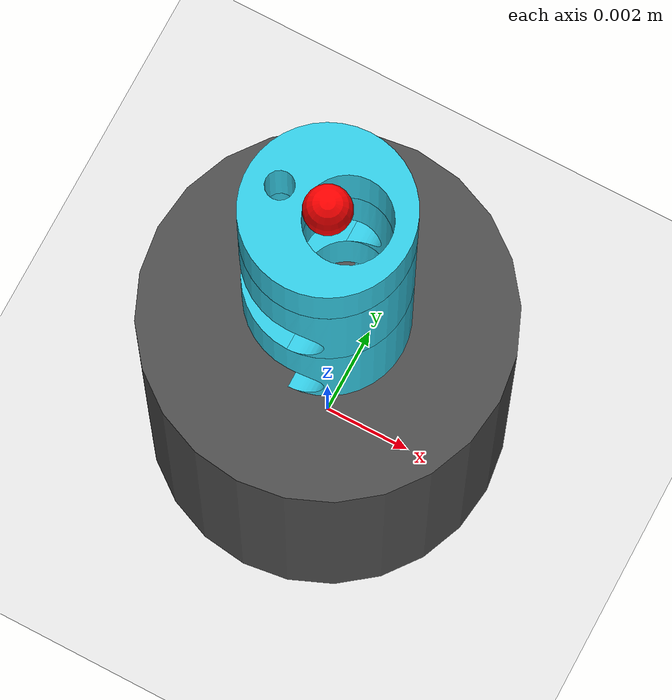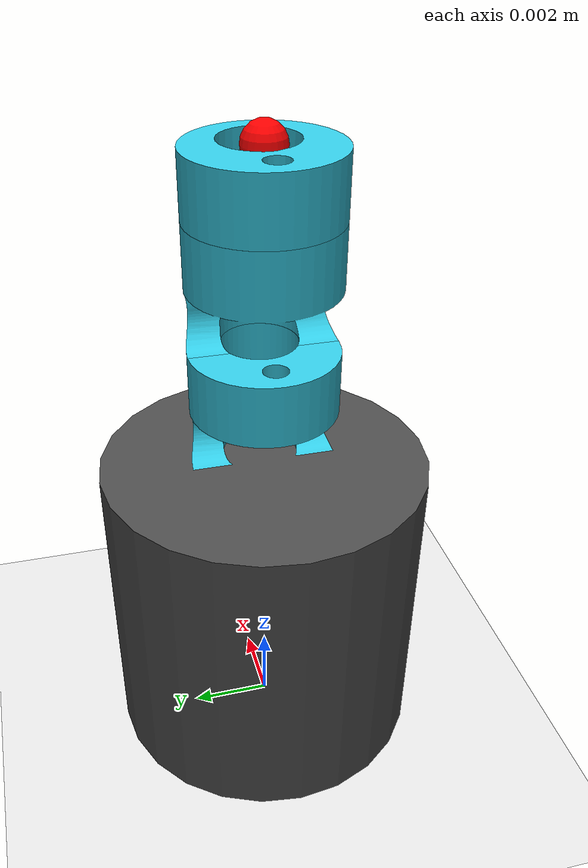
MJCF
<mujoco model="single_twist_tendon_n2">
  <compiler angle="radian" meshdir="assets/models" autolimits="true"/>
  <option gravity="0 0 -9.81" timestep="0.0005" integrator="implicitfast"/>
  <statistic center="0 0 0.0118" extent="0.0300"/>

  <asset>
    <mesh name="notch_mesh"  file="notch.stl"  scale="0.001 0.001 0.001"/>
    <mesh name="distal_mesh" file="distal.stl" scale="0.001 0.001 0.001"/>
    <material name="silicone" rgba="0.2 0.8 0.9 1" specular="0.5" shininess="0.5"/>
    <material name="floor" rgba="0.9 0.9 0.9 1" reflectance="0"/>
  </asset>

  <default>
    <default class="bend">
      <joint type="hinge" axis="0 1 0" stiffness="0.0137" damping="0.0002341" armature="1e-06" range="-0.6000 0.6000"/>
    </default>
    <default class="twist">
      <joint type="hinge" axis="0 0 1" stiffness="0.009135" damping="0.0001911" armature="1e-06" range="-2.2500 2.2500"/>
    </default>
    <default class="seg">
      <geom type="mesh" material="silicone" density="1100" contype="0" conaffinity="0"/>
    </default>
  </default>

  <worldbody>
    <light pos="0 0 0.3" dir="0 0 -1" directional="true"/>
    <geom type="plane" size="0.3 0.3 0.01" material="floor"/>
    <body name="base" pos="0 0 0.004">
      <geom type="cylinder" size="0.004 0.004" rgba="0.3 0.3 0.3 1"/>
      <body name="notch_1" pos="0 0 0.004">
        <joint name="bend_1" class="bend" pos="0 0 0.00075"/>
        <joint name="twist_1" class="twist"/>
        <geom class="seg" mesh="notch_mesh" pos="-0.00175 0.00175 -0.047" quat="0.70710678 0.70710678 0 0"/>
        <body name="notch_2" pos="0 0 0.003">
          <joint name="bend_2" class="bend" pos="0 0 0.00075"/>
          <joint name="twist_2" class="twist"/>
          <geom class="seg" mesh="notch_mesh" pos="-0.00175 0.00175 -0.047" quat="0.70710678 0.70710678 0 0"/>
          <body name="distal_tip" pos="0 0 0.003">
            <geom class="seg" mesh="distal_mesh" pos="-0.00175 0.00175 -0.0485" quat="0.70710678 0.70710678 0 0"/>
            <site name="tip" pos="0 0 0.0015" size="0.0005" rgba="1 0 0 1"/>
          </body>
        </body>
      </body>
    </body>
  </worldbody>

  <!-- 1 sợi tendon = 2 đầu vào: (kéo/đẩy) và (xoắn). Tổng góc chia đều cho các đốt -->
  <tendon>
    <fixed name="bend_total">
      <joint joint="bend_1" coef="1"/>
      <joint joint="bend_2" coef="1"/>
    </fixed>
    <fixed name="twist_total">
      <joint joint="twist_1" coef="1"/>
      <joint joint="twist_2" coef="1"/>
    </fixed>
  </tendon>

  <actuator>
    <position name="pull_push" tendon="bend_total"  kp="0.06851" ctrlrange="-1.2000 1.2000"/>
    <position name="twist"     tendon="twist_total" kp="0.04567" ctrlrange="-4.5000 4.5000"/>
  </actuator>
</mujoco>
